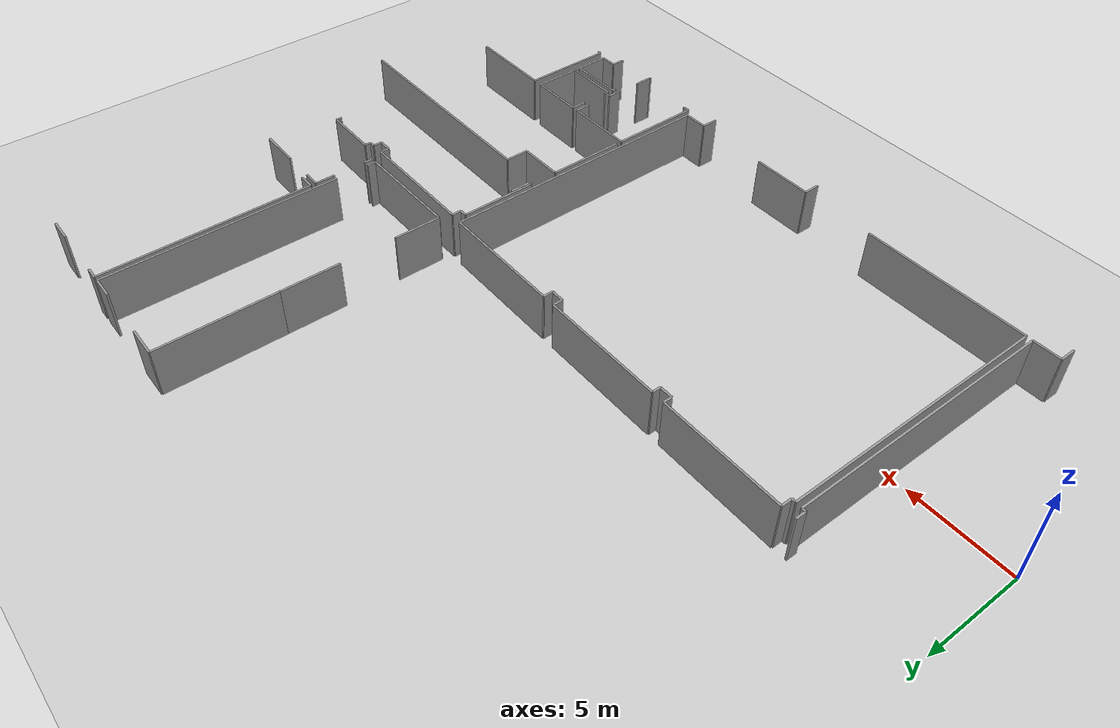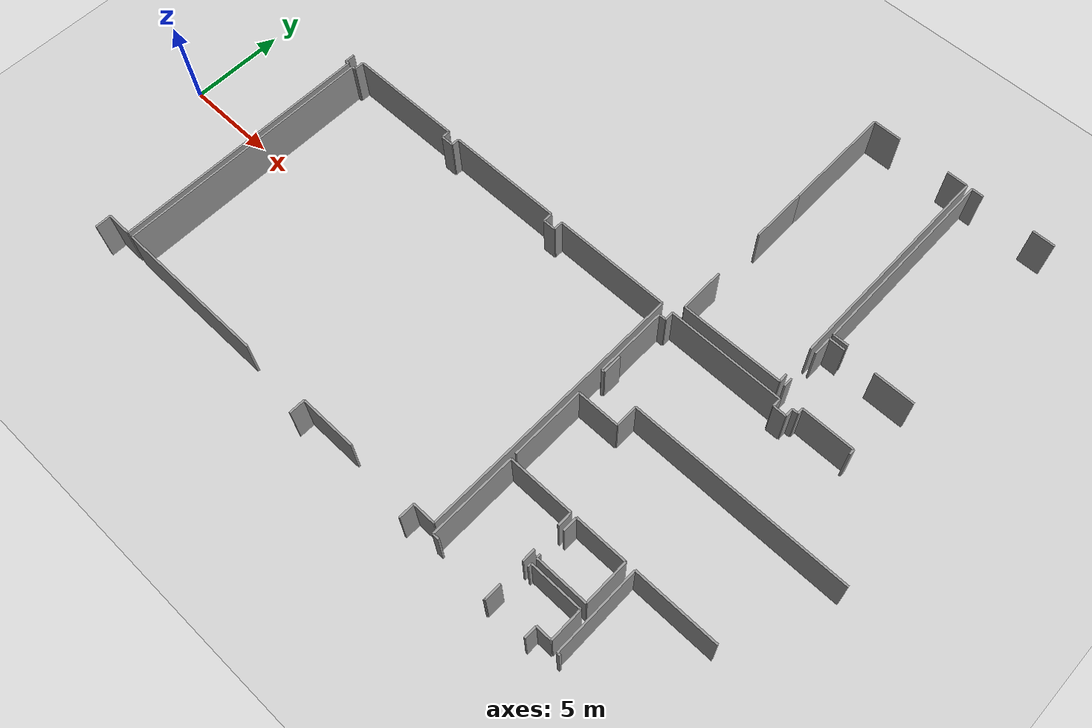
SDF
<sdf version="1.6">
 <world name="default">
  <model name="ground_plane">
   <static>1</static>
   <link name="link">
    <collision name="collision">
     <geometry><plane><normal>0 0 1</normal><size>100 100</size></plane></geometry>
     <surface><friction><ode><mu>100</mu><mu2>50</mu2></ode></friction></surface>
    </collision>
    <visual name="visual">
     <cast_shadows>0</cast_shadows>
     <geometry><plane><normal>0 0 1</normal><size>100 100</size></plane></geometry>
     <material>
      <script><uri>file://media/materials/scripts/gazebo.material</uri><name>Gazebo/Grey</name></script>
     </material>
    </visual>
   </link>
  </model>
  <model name="0510032192_A_40_1_203">
   <static>1</static>
   <link name="Wall_326">
    <collision name="Wall_326_Collision">
     <geometry><box><size>0.519804024986 0.1 2.5</size></box></geometry>
     <pose>0.259902012493 0 1.25 0 0 0</pose>
    </collision>
    <visual name="Wall_326_Visual">
     <pose>0.259902012493 0 1.25 0 0 0</pose>
     <geometry><box><size>0.519804024986 0.1 2.5</size></box></geometry>
     <material>
      <script><uri>file://media/materials/scripts/gazebo.material</uri><name>Gazebo/Grey</name></script>
      <ambient>1 1 1 1</ambient>
     </material>
    </visual>
    <pose>70.1514294611 -17.3870887797 0 0 0 -1.57079632679</pose>
   </link>
   <link name="Wall_327">
    <collision name="Wall_327_Collision">
     <geometry><box><size>0.189620441389 0.1 2.5</size></box></geometry>
     <pose>0.0948102206943 0 1.25 0 0 0</pose>
    </collision>
    <visual name="Wall_327_Visual">
     <pose>0.0948102206943 0 1.25 0 0 0</pose>
     <geometry><box><size>0.189620441389 0.1 2.5</size></box></geometry>
     <material>
      <script><uri>file://media/materials/scripts/gazebo.material</uri><name>Gazebo/Grey</name></script>
      <ambient>1 1 1 1</ambient>
     </material>
    </visual>
    <pose>70.1514294611 -17.9068928047 0 0 0 0.0</pose>
   </link>
   <link name="Wall_328">
    <collision name="Wall_328_Collision">
     <geometry><box><size>13.588363507 0.1 2.5</size></box></geometry>
     <pose>6.79418175348 0 1.25 0 0 0</pose>
    </collision>
    <visual name="Wall_328_Visual">
     <pose>6.79418175348 0 1.25 0 0 0</pose>
     <geometry><box><size>13.588363507 0.1 2.5</size></box></geometry>
     <material>
      <script><uri>file://media/materials/scripts/gazebo.material</uri><name>Gazebo/Grey</name></script>
      <ambient>1 1 1 1</ambient>
     </material>
    </visual>
    <pose>70.3410499025 -17.9068928047 0 0 0 -1.57079632679</pose>
   </link>
   <link name="Wall_329">
    <collision name="Wall_329_Collision">
     <geometry><box><size>1.33954386879 0.1 2.5</size></box></geometry>
     <pose>0.669771934395 0 1.25 0 0 0</pose>
    </collision>
    <visual name="Wall_329_Visual">
     <pose>0.669771934395 0 1.25 0 0 0</pose>
     <geometry><box><size>1.33954386879 0.1 2.5</size></box></geometry>
     <material>
      <script><uri>file://media/materials/scripts/gazebo.material</uri><name>Gazebo/Grey</name></script>
      <ambient>1 1 1 1</ambient>
     </material>
    </visual>
    <pose>70.3410499025 -31.4952563117 0 0 0 3.14159265359</pose>
   </link>
   <link name="Wall_330">
    <collision name="Wall_330_Collision">
     <geometry><box><size>0.822408764226 0.1 2.5</size></box></geometry>
     <pose>0.411204382113 0 1.25 0 0 0</pose>
    </collision>
    <visual name="Wall_330_Visual">
     <pose>0.411204382113 0 1.25 0 0 0</pose>
     <geometry><box><size>0.822408764226 0.1 2.5</size></box></geometry>
     <material>
      <script><uri>file://media/materials/scripts/gazebo.material</uri><name>Gazebo/Grey</name></script>
      <ambient>1 1 1 1</ambient>
     </material>
    </visual>
    <pose>69.0015060337 -31.4952563117 0 0 0 -1.57079632679</pose>
   </link>
   <link name="Wall_333">
    <collision name="Wall_333_Collision">
     <geometry><box><size>13.5799754714 0.1 2.5</size></box></geometry>
     <pose>6.78998773568 0 1.25 0 0 0</pose>
    </collision>
    <visual name="Wall_333_Visual">
     <pose>6.78998773568 0 1.25 0 0 0</pose>
     <geometry><box><size>13.5799754714 0.1 2.5</size></box></geometry>
     <material>
      <script><uri>file://media/materials/scripts/gazebo.material</uri><name>Gazebo/Grey</name></script>
      <ambient>1 1 1 1</ambient>
     </material>
    </visual>
    <pose>70.6456881049 -31.5054236276 0 0 0 1.57079632679</pose>
   </link>
   <link name="Wall_334">
    <collision name="Wall_334_Collision">
     <geometry><box><size>0.193941550643 0.1 2.5</size></box></geometry>
     <pose>0.0969707753214 0 1.25 0 0 0</pose>
    </collision>
    <visual name="Wall_334_Visual">
     <pose>0.0969707753214 0 1.25 0 0 0</pose>
     <geometry><box><size>0.193941550643 0.1 2.5</size></box></geometry>
     <material>
      <script><uri>file://media/materials/scripts/gazebo.material</uri><name>Gazebo/Grey</name></script>
      <ambient>1 1 1 1</ambient>
     </material>
    </visual>
    <pose>70.6456881049 -17.9254481562 0 0 0 0.0</pose>
   </link>
   <link name="Wall_335">
    <collision name="Wall_335_Collision">
     <geometry><box><size>0.523743859894 0.1 2.5</size></box></geometry>
     <pose>0.261871929947 0 1.25 0 0 0</pose>
    </collision>
    <visual name="Wall_335_Visual">
     <pose>0.261871929947 0 1.25 0 0 0</pose>
     <geometry><box><size>0.523743859894 0.1 2.5</size></box></geometry>
     <material>
      <script><uri>file://media/materials/scripts/gazebo.material</uri><name>Gazebo/Grey</name></script>
      <ambient>1 1 1 1</ambient>
     </material>
    </visual>
    <pose>70.8396296555 -17.9254481562 0 0 0 1.57079632679</pose>
   </link>
   <link name="Wall_336">
    <collision name="Wall_336_Collision">
     <geometry><box><size>6.13394167773 0.1 2.5</size></box></geometry>
     <pose>3.06697083887 0 1.25 0 0 0</pose>
    </collision>
    <visual name="Wall_336_Visual">
     <pose>3.06697083887 0 1.25 0 0 0</pose>
     <geometry><box><size>6.13394167773 0.1 2.5</size></box></geometry>
     <material>
      <script><uri>file://media/materials/scripts/gazebo.material</uri><name>Gazebo/Grey</name></script>
      <ambient>1 1 1 1</ambient>
     </material>
    </visual>
    <pose>70.8396296555 -17.4017042963 0 0 0 0.0</pose>
   </link>
   <link name="Wall_337">
    <collision name="Wall_337_Collision">
     <geometry><box><size>0.419655963448 0.1 2.5</size></box></geometry>
     <pose>0.209827981724 0 1.25 0 0 0</pose>
    </collision>
    <visual name="Wall_337_Visual">
     <pose>0.209827981724 0 1.25 0 0 0</pose>
     <geometry><box><size>0.419655963448 0.1 2.5</size></box></geometry>
     <material>
      <script><uri>file://media/materials/scripts/gazebo.material</uri><name>Gazebo/Grey</name></script>
      <ambient>1 1 1 1</ambient>
     </material>
    </visual>
    <pose>76.9735713333 -17.4017042963 0 0 0 -1.57079632679</pose>
   </link>
   <link name="Wall_338">
    <collision name="Wall_338_Collision">
     <geometry><box><size>0.651852040135 0.1 2.5</size></box></geometry>
     <pose>0.325926020068 0 1.25 0 0 0</pose>
    </collision>
    <visual name="Wall_338_Visual">
     <pose>0.325926020068 0 1.25 0 0 0</pose>
     <geometry><box><size>0.651852040135 0.1 2.5</size></box></geometry>
     <material>
      <script><uri>file://media/materials/scripts/gazebo.material</uri><name>Gazebo/Grey</name></script>
      <ambient>1 1 1 1</ambient>
     </material>
    </visual>
    <pose>76.9735713333 -17.8213602598 0 0 0 0.0</pose>
   </link>
   <link name="Wall_339">
    <collision name="Wall_339_Collision">
     <geometry><box><size>0.417876683167 0.1 2.5</size></box></geometry>
     <pose>0.208938341584 0 1.25 0 0 0</pose>
    </collision>
    <visual name="Wall_339_Visual">
     <pose>0.208938341584 0 1.25 0 0 0</pose>
     <geometry><box><size>0.417876683167 0.1 2.5</size></box></geometry>
     <material>
      <script><uri>file://media/materials/scripts/gazebo.material</uri><name>Gazebo/Grey</name></script>
      <ambient>1 1 1 1</ambient>
     </material>
    </visual>
    <pose>77.6254233734 -17.8213602598 0 0 0 1.57079632679</pose>
   </link>
   <link name="Wall_340">
    <collision name="Wall_340_Collision">
     <geometry><box><size>6.17537348999 0.1 2.5</size></box></geometry>
     <pose>3.087686745 0 1.25 0 0 0</pose>
    </collision>
    <visual name="Wall_340_Visual">
     <pose>3.087686745 0 1.25 0 0 0</pose>
     <geometry><box><size>6.17537348999 0.1 2.5</size></box></geometry>
     <material>
      <script><uri>file://media/materials/scripts/gazebo.material</uri><name>Gazebo/Grey</name></script>
      <ambient>1 1 1 1</ambient>
     </material>
    </visual>
    <pose>77.6254233734 -17.4034835766 0 0 0 0.0</pose>
   </link>
   <link name="Wall_341">
    <collision name="Wall_341_Collision">
     <geometry><box><size>0.484726785158 0.1 2.5</size></box></geometry>
     <pose>0.242363392579 0 1.25 0 0 0</pose>
    </collision>
    <visual name="Wall_341_Visual">
     <pose>0.242363392579 0 1.25 0 0 0</pose>
     <geometry><box><size>0.484726785158 0.1 2.5</size></box></geometry>
     <material>
      <script><uri>file://media/materials/scripts/gazebo.material</uri><name>Gazebo/Grey</name></script>
      <ambient>1 1 1 1</ambient>
     </material>
    </visual>
    <pose>83.8007968634 -17.4034835766 0 0 0 -1.57079632679</pose>
   </link>
   <link name="Wall_342">
    <collision name="Wall_342_Collision">
     <geometry><box><size>0.668501019909 0.1 2.5</size></box></geometry>
     <pose>0.334250509954 0 1.25 0 0 0</pose>
    </collision>
    <visual name="Wall_342_Visual">
     <pose>0.334250509954 0 1.25 0 0 0</pose>
     <geometry><box><size>0.668501019909 0.1 2.5</size></box></geometry>
     <material>
      <script><uri>file://media/materials/scripts/gazebo.material</uri><name>Gazebo/Grey</name></script>
      <ambient>1 1 1 1</ambient>
     </material>
    </visual>
    <pose>83.8007968634 -17.8882103618 0 0 0 0.0</pose>
   </link>
   <link name="Wall_343">
    <collision name="Wall_343_Collision">
     <geometry><box><size>0.484726785158 0.1 2.5</size></box></geometry>
     <pose>0.242363392579 0 1.25 0 0 0</pose>
    </collision>
    <visual name="Wall_343_Visual">
     <pose>0.242363392579 0 1.25 0 0 0</pose>
     <geometry><box><size>0.484726785158 0.1 2.5</size></box></geometry>
     <material>
      <script><uri>file://media/materials/scripts/gazebo.material</uri><name>Gazebo/Grey</name></script>
      <ambient>1 1 1 1</ambient>
     </material>
    </visual>
    <pose>84.4692978833 -17.8882103618 0 0 0 1.57079632679</pose>
   </link>
   <link name="Wall_344">
    <collision name="Wall_344_Collision">
     <geometry><box><size>6.18503244009 0.1 2.5</size></box></geometry>
     <pose>3.09251622005 0 1.25 0 0 0</pose>
    </collision>
    <visual name="Wall_344_Visual">
     <pose>3.09251622005 0 1.25 0 0 0</pose>
     <geometry><box><size>6.18503244009 0.1 2.5</size></box></geometry>
     <material>
      <script><uri>file://media/materials/scripts/gazebo.material</uri><name>Gazebo/Grey</name></script>
      <ambient>1 1 1 1</ambient>
     </material>
    </visual>
    <pose>84.4692978833 -17.4034835766 0 0 0 0.0</pose>
   </link>
   <link name="Wall_345">
    <collision name="Wall_345_Collision">
     <geometry><box><size>14.0822408764 0.1 2.5</size></box></geometry>
     <pose>7.04112043821 0 1.25 0 0 0</pose>
    </collision>
    <visual name="Wall_345_Visual">
     <pose>7.04112043821 0 1.25 0 0 0</pose>
     <geometry><box><size>14.0822408764 0.1 2.5</size></box></geometry>
     <material>
      <script><uri>file://media/materials/scripts/gazebo.material</uri><name>Gazebo/Grey</name></script>
      <ambient>1 1 1 1</ambient>
     </material>
    </visual>
    <pose>90.6543303234 -17.4034835766 0 0 0 -1.57079632679</pose>
   </link>
   <link name="Wall_346">
    <collision name="Wall_346_Collision">
     <geometry><box><size>1.1930074285 0.1 2.5</size></box></geometry>
     <pose>0.596503714248 0 1.25 0 0 0</pose>
    </collision>
    <visual name="Wall_346_Visual">
     <pose>0.596503714248 0 1.25 0 0 0</pose>
     <geometry><box><size>1.1930074285 0.1 2.5</size></box></geometry>
     <material>
      <script><uri>file://media/materials/scripts/gazebo.material</uri><name>Gazebo/Grey</name></script>
      <ambient>1 1 1 1</ambient>
     </material>
    </visual>
    <pose>90.6543303234 -31.485724453 0 0 0 3.14159265359</pose>
   </link>
   <link name="Wall_347">
    <collision name="Wall_347_Collision">
     <geometry><box><size>0.82774660507 0.1 2.5</size></box></geometry>
     <pose>0.413873302535 0 1.25 0 0 0</pose>
    </collision>
    <visual name="Wall_347_Visual">
     <pose>0.413873302535 0 1.25 0 0 0</pose>
     <geometry><box><size>0.82774660507 0.1 2.5</size></box></geometry>
     <material>
      <script><uri>file://media/materials/scripts/gazebo.material</uri><name>Gazebo/Grey</name></script>
      <ambient>1 1 1 1</ambient>
     </material>
    </visual>
    <pose>89.4613228949 -31.485724453 0 0 0 -1.57079632679</pose>
   </link>
   <link name="Wall_351">
    <collision name="Wall_351_Collision">
     <geometry><box><size>3.02121791735 0.1 2.5</size></box></geometry>
     <pose>1.51060895868 0 1.25 0 0 0</pose>
    </collision>
    <visual name="Wall_351_Visual">
     <pose>1.51060895868 0 1.25 0 0 0</pose>
     <geometry><box><size>3.02121791735 0.1 2.5</size></box></geometry>
     <material>
      <script><uri>file://media/materials/scripts/gazebo.material</uri><name>Gazebo/Grey</name></script>
      <ambient>1 1 1 1</ambient>
     </material>
    </visual>
    <pose>85.6512483558 -31.4983065064 0 0 0 3.14159265359</pose>
   </link>
   <link name="Wall_352">
    <collision name="Wall_352_Collision">
     <geometry><box><size>0.822281672778 0.1 2.5</size></box></geometry>
     <pose>0.411140836389 0 1.25 0 0 0</pose>
    </collision>
    <visual name="Wall_352_Visual">
     <pose>0.411140836389 0 1.25 0 0 0</pose>
     <geometry><box><size>0.822281672778 0.1 2.5</size></box></geometry>
     <material>
      <script><uri>file://media/materials/scripts/gazebo.material</uri><name>Gazebo/Grey</name></script>
      <ambient>1 1 1 1</ambient>
     </material>
    </visual>
    <pose>82.6300304384 -31.4983065064 0 0 0 -1.57079632679</pose>
   </link>
   <link name="Wall_355">
    <collision name="Wall_355_Collision">
     <geometry><box><size>8.19803406178 0.1 2.5</size></box></geometry>
     <pose>4.09901703089 0 1.25 0 0 0</pose>
    </collision>
    <visual name="Wall_355_Visual">
     <pose>4.09901703089 0 1.25 0 0 0</pose>
     <geometry><box><size>8.19803406178 0.1 2.5</size></box></geometry>
     <material>
      <script><uri>file://media/materials/scripts/gazebo.material</uri><name>Gazebo/Grey</name></script>
      <ambient>1 1 1 1</ambient>
     </material>
    </visual>
    <pose>78.8437220002 -31.5037714387 0 0 0 -3.14139111883</pose>
   </link>
   <link name="Wall_357">
    <collision name="Wall_357_Collision">
     <geometry><box><size>0.334250509954 0.1 2.5</size></box></geometry>
     <pose>0.167125254977 0 1.25 0 0 0</pose>
    </collision>
    <visual name="Wall_357_Visual">
     <pose>0.167125254977 0 1.25 0 0 0</pose>
     <geometry><box><size>0.334250509954 0.1 2.5</size></box></geometry>
     <material>
      <script><uri>file://media/materials/scripts/gazebo.material</uri><name>Gazebo/Grey</name></script>
      <ambient>1 1 1 1</ambient>
     </material>
    </visual>
    <pose>91.2965234134 -31.8350988454 0 0 0 3.14159265359</pose>
   </link>
   <link name="Wall_358">
    <collision name="Wall_358_Collision">
     <geometry><box><size>4.51988027986 0.1 2.5</size></box></geometry>
     <pose>2.25994013993 0 1.25 0 0 0</pose>
    </collision>
    <visual name="Wall_358_Visual">
     <pose>2.25994013993 0 1.25 0 0 0</pose>
     <geometry><box><size>4.51988027986 0.1 2.5</size></box></geometry>
     <material>
      <script><uri>file://media/materials/scripts/gazebo.material</uri><name>Gazebo/Grey</name></script>
      <ambient>1 1 1 1</ambient>
     </material>
    </visual>
    <pose>90.9622729035 -31.8350988454 0 0 0 1.57079632679</pose>
   </link>
   <link name="Wall_359">
    <collision name="Wall_359_Collision">
     <geometry><box><size>3.45955632375 0.1 2.5</size></box></geometry>
     <pose>1.72977816188 0 1.25 0 0 0</pose>
    </collision>
    <visual name="Wall_359_Visual">
     <pose>1.72977816188 0 1.25 0 0 0</pose>
     <geometry><box><size>3.45955632375 0.1 2.5</size></box></geometry>
     <material>
      <script><uri>file://media/materials/scripts/gazebo.material</uri><name>Gazebo/Grey</name></script>
      <ambient>1 1 1 1</ambient>
     </material>
    </visual>
    <pose>90.9622729035 -27.3152185655 0 0 0 0.0</pose>
   </link>
   <link name="Wall_360">
    <collision name="Wall_360_Collision">
     <geometry><box><size>0.767886532755 0.1 2.5</size></box></geometry>
     <pose>0.383943266377 0 1.25 0 0 0</pose>
    </collision>
    <visual name="Wall_360_Visual">
     <pose>0.383943266377 0 1.25 0 0 0</pose>
     <geometry><box><size>0.767886532755 0.1 2.5</size></box></geometry>
     <material>
      <script><uri>file://media/materials/scripts/gazebo.material</uri><name>Gazebo/Grey</name></script>
      <ambient>1 1 1 1</ambient>
     </material>
    </visual>
    <pose>94.4218292272 -27.3152185655 0 0 0 -1.57079632679</pose>
   </link>
   <link name="Wall_361">
    <collision name="Wall_361_Collision">
     <geometry><box><size>0.681972713466 0.1 2.5</size></box></geometry>
     <pose>0.340986356733 0 1.25 0 0 0</pose>
    </collision>
    <visual name="Wall_361_Visual">
     <pose>0.340986356733 0 1.25 0 0 0</pose>
     <geometry><box><size>0.681972713466 0.1 2.5</size></box></geometry>
     <material>
      <script><uri>file://media/materials/scripts/gazebo.material</uri><name>Gazebo/Grey</name></script>
      <ambient>1 1 1 1</ambient>
     </material>
    </visual>
    <pose>94.4218292272 -29.4663684254 0 0 0 -1.57079632679</pose>
   </link>
   <link name="Wall_362">
    <collision name="Wall_362_Collision">
     <geometry><box><size>0.889513049114 0.1 2.5</size></box></geometry>
     <pose>0.444756524557 0 1.25 0 0 0</pose>
    </collision>
    <visual name="Wall_362_Visual">
     <pose>0.444756524557 0 1.25 0 0 0</pose>
     <geometry><box><size>0.889513049114 0.1 2.5</size></box></geometry>
     <material>
      <script><uri>file://media/materials/scripts/gazebo.material</uri><name>Gazebo/Grey</name></script>
      <ambient>1 1 1 1</ambient>
     </material>
    </visual>
    <pose>94.4218292272 -31.4148074247 0 0 0 -1.57079632679</pose>
   </link>
   <link name="Wall_363">
    <collision name="Wall_363_Collision">
     <geometry><box><size>0.0604955295583 0.1 2.5</size></box></geometry>
     <pose>0.0302477647791 0 1.25 0 0 0</pose>
    </collision>
    <visual name="Wall_363_Visual">
     <pose>0.0302477647791 0 1.25 0 0 0</pose>
     <geometry><box><size>0.0604955295583 0.1 2.5</size></box></geometry>
     <material>
      <script><uri>file://media/materials/scripts/gazebo.material</uri><name>Gazebo/Grey</name></script>
      <ambient>1 1 1 1</ambient>
     </material>
    </visual>
    <pose>94.4218292272 -32.3043204738 0 0 0 3.14159265359</pose>
   </link>
   <link name="Wall_366">
    <collision name="Wall_366_Collision">
     <geometry><box><size>0.167252346426 0.1 2.5</size></box></geometry>
     <pose>0.0836261732129 0 1.25 0 0 0</pose>
    </collision>
    <visual name="Wall_366_Visual">
     <pose>0.0836261732129 0 1.25 0 0 0</pose>
     <geometry><box><size>0.167252346426 0.1 2.5</size></box></geometry>
     <material>
      <script><uri>file://media/materials/scripts/gazebo.material</uri><name>Gazebo/Grey</name></script>
      <ambient>1 1 1 1</ambient>
     </material>
    </visual>
    <pose>98.1262907725 -31.8504769107 0 0 0 3.14159265359</pose>
   </link>
   <link name="Wall_367">
    <collision name="Wall_367_Collision">
     <geometry><box><size>4.53665635108 0.1 2.5</size></box></geometry>
     <pose>2.26832817554 0 1.25 0 0 0</pose>
    </collision>
    <visual name="Wall_367_Visual">
     <pose>2.26832817554 0 1.25 0 0 0</pose>
     <geometry><box><size>4.53665635108 0.1 2.5</size></box></geometry>
     <material>
      <script><uri>file://media/materials/scripts/gazebo.material</uri><name>Gazebo/Grey</name></script>
      <ambient>1 1 1 1</ambient>
     </material>
    </visual>
    <pose>97.9590384261 -31.8504769107 0 0 0 1.57079632679</pose>
   </link>
   <link name="Wall_368">
    <collision name="Wall_368_Collision">
     <geometry><box><size>4.35224665908 0.1 2.5</size></box></geometry>
     <pose>2.17612332954 0 1.25 0 0 0</pose>
    </collision>
    <visual name="Wall_368_Visual">
     <pose>2.17612332954 0 1.25 0 0 0</pose>
     <geometry><box><size>4.35224665908 0.1 2.5</size></box></geometry>
     <material>
      <script><uri>file://media/materials/scripts/gazebo.material</uri><name>Gazebo/Grey</name></script>
      <ambient>1 1 1 1</ambient>
     </material>
    </visual>
    <pose>97.9590384261 -27.3138205596 0 0 0 0.0</pose>
   </link>
   <link name="Wall_394">
    <collision name="Wall_394_Collision">
     <geometry><box><size>0.208557067238 0.1 2.5</size></box></geometry>
     <pose>0.104278533619 0 1.25 0 0 0</pose>
    </collision>
    <visual name="Wall_394_Visual">
     <pose>0.104278533619 0 1.25 0 0 0</pose>
     <geometry><box><size>0.208557067238 0.1 2.5</size></box></geometry>
     <material>
      <script><uri>file://media/materials/scripts/gazebo.material</uri><name>Gazebo/Grey</name></script>
      <ambient>1 1 1 1</ambient>
     </material>
    </visual>
    <pose>94.7311698132 -29.6533199464 0 0 0 1.57079632679</pose>
   </link>
   <link name="Wall_395">
    <collision name="Wall_395_Collision">
     <geometry><box><size>0.772716007803 0.1 2.5</size></box></geometry>
     <pose>0.386358003902 0 1.25 0 0 0</pose>
    </collision>
    <visual name="Wall_395_Visual">
     <pose>0.386358003902 0 1.25 0 0 0</pose>
     <geometry><box><size>0.772716007803 0.1 2.5</size></box></geometry>
     <material>
      <script><uri>file://media/materials/scripts/gazebo.material</uri><name>Gazebo/Grey</name></script>
      <ambient>1 1 1 1</ambient>
     </material>
    </visual>
    <pose>94.7311698132 -28.0881887562 0 0 0 1.57079632679</pose>
   </link>
   <link name="Wall_396">
    <collision name="Wall_396_Collision">
     <geometry><box><size>2.72560320779 0.1 2.5</size></box></geometry>
     <pose>1.36280160389 0 1.25 0 0 0</pose>
    </collision>
    <visual name="Wall_396_Visual">
     <pose>1.36280160389 0 1.25 0 0 0</pose>
     <geometry><box><size>2.72560320779 0.1 2.5</size></box></geometry>
     <material>
      <script><uri>file://media/materials/scripts/gazebo.material</uri><name>Gazebo/Grey</name></script>
      <ambient>1 1 1 1</ambient>
     </material>
    </visual>
    <pose>94.7311698132 -27.3154727484 0 0 0 0.0</pose>
   </link>
   <link name="Wall_397">
    <collision name="Wall_397_Collision">
     <geometry><box><size>2.33022171103 0.1 2.5</size></box></geometry>
     <pose>1.16511085552 0 1.25 0 0 0</pose>
    </collision>
    <visual name="Wall_397_Visual">
     <pose>1.16511085552 0 1.25 0 0 0</pose>
     <geometry><box><size>2.33022171103 0.1 2.5</size></box></geometry>
     <material>
      <script><uri>file://media/materials/scripts/gazebo.material</uri><name>Gazebo/Grey</name></script>
      <ambient>1 1 1 1</ambient>
     </material>
    </visual>
    <pose>97.456773021 -27.3154727484 0 0 0 -1.57079632679</pose>
   </link>
   <link name="Wall_398">
    <collision name="Wall_398_Collision">
     <geometry><box><size>2.72561387477 0.1 2.5</size></box></geometry>
     <pose>1.36280693739 0 1.25 0 0 0</pose>
    </collision>
    <visual name="Wall_398_Visual">
     <pose>1.36280693739 0 1.25 0 0 0</pose>
     <geometry><box><size>2.72561387477 0.1 2.5</size></box></geometry>
     <material>
      <script><uri>file://media/materials/scripts/gazebo.material</uri><name>Gazebo/Grey</name></script>
      <ambient>1 1 1 1</ambient>
     </material>
    </visual>
    <pose>97.456773021 -29.6456944594 0 0 0 -3.13879493637</pose>
   </link>
   <link name="Wall_400">
    <collision name="Wall_400_Collision">
     <geometry><box><size>0.196229196719 0.1 2.5</size></box></geometry>
     <pose>0.0981145983593 0 1.25 0 0 0</pose>
    </collision>
    <visual name="Wall_400_Visual">
     <pose>0.0981145983593 0 1.25 0 0 0</pose>
     <geometry><box><size>0.196229196719 0.1 2.5</size></box></geometry>
     <material>
      <script><uri>file://media/materials/scripts/gazebo.material</uri><name>Gazebo/Grey</name></script>
      <ambient>1 1 1 1</ambient>
     </material>
    </visual>
    <pose>94.7310427218 -30.1689299535 0 0 0 1.57079632679</pose>
   </link>
   <link name="Wall_401">
    <collision name="Wall_401_Collision">
     <geometry><box><size>2.73043268284 0.1 2.5</size></box></geometry>
     <pose>1.36521634142 0 1.25 0 0 0</pose>
    </collision>
    <visual name="Wall_401_Visual">
     <pose>1.36521634142 0 1.25 0 0 0</pose>
     <geometry><box><size>2.73043268284 0.1 2.5</size></box></geometry>
     <material>
      <script><uri>file://media/materials/scripts/gazebo.material</uri><name>Gazebo/Grey</name></script>
      <ambient>1 1 1 1</ambient>
     </material>
    </visual>
    <pose>94.7310427218 -29.9727007568 0 0 0 0.0</pose>
   </link>
   <link name="Wall_402">
    <collision name="Wall_402_Collision">
     <geometry><box><size>1.67862385379 0.1 2.5</size></box></geometry>
     <pose>0.839311926897 0 1.25 0 0 0</pose>
    </collision>
    <visual name="Wall_402_Visual">
     <pose>0.839311926897 0 1.25 0 0 0</pose>
     <geometry><box><size>1.67862385379 0.1 2.5</size></box></geometry>
     <material>
      <script><uri>file://media/materials/scripts/gazebo.material</uri><name>Gazebo/Grey</name></script>
      <ambient>1 1 1 1</ambient>
     </material>
    </visual>
    <pose>97.4614754046 -29.9727007568 0 0 0 -1.57079632679</pose>
   </link>
   <link name="Wall_403">
    <collision name="Wall_403_Collision">
     <geometry><box><size>0.82113784974 0.1 2.5</size></box></geometry>
     <pose>0.41056892487 0 1.25 0 0 0</pose>
    </collision>
    <visual name="Wall_403_Visual">
     <pose>0.41056892487 0 1.25 0 0 0</pose>
     <geometry><box><size>0.82113784974 0.1 2.5</size></box></geometry>
     <material>
      <script><uri>file://media/materials/scripts/gazebo.material</uri><name>Gazebo/Grey</name></script>
      <ambient>1 1 1 1</ambient>
     </material>
    </visual>
    <pose>97.4614754046 -31.6513246106 0 0 0 3.14159265359</pose>
   </link>
   <link name="Wall_404">
    <collision name="Wall_404_Collision">
     <geometry><box><size>0.661256807336 0.1 2.5</size></box></geometry>
     <pose>0.330628403668 0 1.25 0 0 0</pose>
    </collision>
    <visual name="Wall_404_Visual">
     <pose>0.330628403668 0 1.25 0 0 0</pose>
     <geometry><box><size>0.661256807336 0.1 2.5</size></box></geometry>
     <material>
      <script><uri>file://media/materials/scripts/gazebo.material</uri><name>Gazebo/Grey</name></script>
      <ambient>1 1 1 1</ambient>
     </material>
    </visual>
    <pose>96.6403375549 -31.6513246106 0 0 0 -1.57079632679</pose>
   </link>
   <link name="Wall_417">
    <collision name="Wall_417_Collision">
     <geometry><box><size>3.88238957342 0.1 2.5</size></box></geometry>
     <pose>1.94119478671 0 1.25 0 0 0</pose>
    </collision>
    <visual name="Wall_417_Visual">
     <pose>1.94119478671 0 1.25 0 0 0</pose>
     <geometry><box><size>3.88238957342 0.1 2.5</size></box></geometry>
     <material>
      <script><uri>file://media/materials/scripts/gazebo.material</uri><name>Gazebo/Grey</name></script>
      <ambient>1 1 1 1</ambient>
     </material>
    </visual>
    <pose>90.952232679 -27.025577154 0 0 0 1.57079632679</pose>
   </link>
   <link name="Wall_418">
    <collision name="Wall_418_Collision">
     <geometry><box><size>2.2295652837 0.1 2.5</size></box></geometry>
     <pose>1.11478264185 0 1.25 0 0 0</pose>
    </collision>
    <visual name="Wall_418_Visual">
     <pose>1.11478264185 0 1.25 0 0 0</pose>
     <geometry><box><size>2.2295652837 0.1 2.5</size></box></geometry>
     <material>
      <script><uri>file://media/materials/scripts/gazebo.material</uri><name>Gazebo/Grey</name></script>
      <ambient>1 1 1 1</ambient>
     </material>
    </visual>
    <pose>90.952232679 -23.1431875806 0 0 0 0.0</pose>
   </link>
   <link name="Wall_419">
    <collision name="Wall_419_Collision">
     <geometry><box><size>1.1687329618 0.1 2.5</size></box></geometry>
     <pose>0.584366480901 0 1.25 0 0 0</pose>
    </collision>
    <visual name="Wall_419_Visual">
     <pose>0.584366480901 0 1.25 0 0 0</pose>
     <geometry><box><size>1.1687329618 0.1 2.5</size></box></geometry>
     <material>
      <script><uri>file://media/materials/scripts/gazebo.material</uri><name>Gazebo/Grey</name></script>
      <ambient>1 1 1 1</ambient>
     </material>
    </visual>
    <pose>93.1817979627 -23.1431875806 0 0 0 1.57079632679</pose>
   </link>
   <link name="Wall_420">
    <collision name="Wall_420_Collision">
     <geometry><box><size>11.4309861661 0.1 2.5</size></box></geometry>
     <pose>5.71549308305 0 1.25 0 0 0</pose>
    </collision>
    <visual name="Wall_420_Visual">
     <pose>5.71549308305 0 1.25 0 0 0</pose>
     <geometry><box><size>11.4309861661 0.1 2.5</size></box></geometry>
     <material>
      <script><uri>file://media/materials/scripts/gazebo.material</uri><name>Gazebo/Grey</name></script>
      <ambient>1 1 1 1</ambient>
     </material>
    </visual>
    <pose>93.1817979627 -21.9744546188 0 0 0 0.0</pose>
   </link>
   <link name="Wall_424">
    <collision name="Wall_424_Collision">
     <geometry><box><size>3.76076305706 0.1 2.5</size></box></geometry>
     <pose>1.88038152853 0 1.25 0 0 0</pose>
    </collision>
    <visual name="Wall_424_Visual">
     <pose>1.88038152853 0 1.25 0 0 0</pose>
     <geometry><box><size>3.76076305706 0.1 2.5</size></box></geometry>
     <material>
      <script><uri>file://media/materials/scripts/gazebo.material</uri><name>Gazebo/Grey</name></script>
      <ambient>1 1 1 1</ambient>
     </material>
    </visual>
    <pose>90.9427008204 -21.6823984698 0 0 0 1.57079632679</pose>
   </link>
   <link name="Wall_425">
    <collision name="Wall_425_Collision">
     <geometry><box><size>0.370598664269 0.1 2.5</size></box></geometry>
     <pose>0.185299332134 0 1.25 0 0 0</pose>
    </collision>
    <visual name="Wall_425_Visual">
     <pose>0.185299332134 0 1.25 0 0 0</pose>
     <geometry><box><size>0.370598664269 0.1 2.5</size></box></geometry>
     <material>
      <script><uri>file://media/materials/scripts/gazebo.material</uri><name>Gazebo/Grey</name></script>
      <ambient>1 1 1 1</ambient>
     </material>
    </visual>
    <pose>90.9427008204 -17.9216354128 0 0 0 0.0</pose>
   </link>
   <link name="Wall_426">
    <collision name="Wall_426_Collision">
     <geometry><box><size>0.467950713936 0.1 2.5</size></box></geometry>
     <pose>0.233975356968 0 1.25 0 0 0</pose>
    </collision>
    <visual name="Wall_426_Visual">
     <pose>0.233975356968 0 1.25 0 0 0</pose>
     <geometry><box><size>0.467950713936 0.1 2.5</size></box></geometry>
     <material>
      <script><uri>file://media/materials/scripts/gazebo.material</uri><name>Gazebo/Grey</name></script>
      <ambient>1 1 1 1</ambient>
     </material>
    </visual>
    <pose>91.3132994846 -17.9216354128 0 0 0 1.57079632679</pose>
   </link>
   <link name="Wall_427">
    <collision name="Wall_427_Collision">
     <geometry><box><size>6.13368749484 0.1 2.5</size></box></geometry>
     <pose>3.06684374742 0 1.25 0 0 0</pose>
    </collision>
    <visual name="Wall_427_Visual">
     <pose>3.06684374742 0 1.25 0 0 0</pose>
     <geometry><box><size>6.13368749484 0.1 2.5</size></box></geometry>
     <material>
      <script><uri>file://media/materials/scripts/gazebo.material</uri><name>Gazebo/Grey</name></script>
      <ambient>1 1 1 1</ambient>
     </material>
    </visual>
    <pose>91.3132994846 -17.4536846988 0 0 0 0.0</pose>
   </link>
   <link name="Wall_428">
    <collision name="Wall_428_Collision">
     <geometry><box><size>0.442786607103 0.1 2.5</size></box></geometry>
     <pose>0.221393303552 0 1.25 0 0 0</pose>
    </collision>
    <visual name="Wall_428_Visual">
     <pose>0.221393303552 0 1.25 0 0 0</pose>
     <geometry><box><size>0.442786607103 0.1 2.5</size></box></geometry>
     <material>
      <script><uri>file://media/materials/scripts/gazebo.material</uri><name>Gazebo/Grey</name></script>
      <ambient>1 1 1 1</ambient>
     </material>
    </visual>
    <pose>97.4469869795 -17.4536846988 0 0 0 -1.57079632679</pose>
   </link>
   <link name="Wall_429">
    <collision name="Wall_429_Collision">
     <geometry><box><size>0.676761964071 0.1 2.5</size></box></geometry>
     <pose>0.338380982036 0 1.25 0 0 0</pose>
    </collision>
    <visual name="Wall_429_Visual">
     <pose>0.338380982036 0 1.25 0 0 0</pose>
     <geometry><box><size>0.676761964071 0.1 2.5</size></box></geometry>
     <material>
      <script><uri>file://media/materials/scripts/gazebo.material</uri><name>Gazebo/Grey</name></script>
      <ambient>1 1 1 1</ambient>
     </material>
    </visual>
    <pose>97.4469869795 -17.8964713059 0 0 0 0.0</pose>
   </link>
   <link name="Wall_430">
    <collision name="Wall_430_Collision">
     <geometry><box><size>0.442786607103 0.1 2.5</size></box></geometry>
     <pose>0.221393303552 0 1.25 0 0 0</pose>
    </collision>
    <visual name="Wall_430_Visual">
     <pose>0.221393303552 0 1.25 0 0 0</pose>
     <geometry><box><size>0.442786607103 0.1 2.5</size></box></geometry>
     <material>
      <script><uri>file://media/materials/scripts/gazebo.material</uri><name>Gazebo/Grey</name></script>
      <ambient>1 1 1 1</ambient>
     </material>
    </visual>
    <pose>98.1237489436 -17.8964713059 0 0 0 1.57079632679</pose>
   </link>
   <link name="Wall_431">
    <collision name="Wall_431_Collision">
     <geometry><box><size>0.300825458959 0.1 2.5</size></box></geometry>
     <pose>0.150412729479 0 1.25 0 0 0</pose>
    </collision>
    <visual name="Wall_431_Visual">
     <pose>0.150412729479 0 1.25 0 0 0</pose>
     <geometry><box><size>0.300825458959 0.1 2.5</size></box></geometry>
     <material>
      <script><uri>file://media/materials/scripts/gazebo.material</uri><name>Gazebo/Grey</name></script>
      <ambient>1 1 1 1</ambient>
     </material>
    </visual>
    <pose>98.1237489436 -17.4536846988 0 0 0 0.0</pose>
   </link>
   <link name="Wall_432">
    <collision name="Wall_432_Collision">
     <geometry><box><size>0.30921349457 0.1 2.5</size></box></geometry>
     <pose>0.154606747285 0 1.25 0 0 0</pose>
    </collision>
    <visual name="Wall_432_Visual">
     <pose>0.154606747285 0 1.25 0 0 0</pose>
     <geometry><box><size>0.30921349457 0.1 2.5</size></box></geometry>
     <material>
      <script><uri>file://media/materials/scripts/gazebo.material</uri><name>Gazebo/Grey</name></script>
      <ambient>1 1 1 1</ambient>
     </material>
    </visual>
    <pose>98.4245744025 -17.4536846988 0 0 0 1.57079632679</pose>
   </link>
   <link name="Wall_433">
    <collision name="Wall_433_Collision">
     <geometry><box><size>2.75000476593 0.1 2.5</size></box></geometry>
     <pose>1.37500238296 0 1.25 0 0 0</pose>
    </collision>
    <visual name="Wall_433_Visual">
     <pose>1.37500238296 0 1.25 0 0 0</pose>
     <geometry><box><size>2.75000476593 0.1 2.5</size></box></geometry>
     <material>
      <script><uri>file://media/materials/scripts/gazebo.material</uri><name>Gazebo/Grey</name></script>
      <ambient>1 1 1 1</ambient>
     </material>
    </visual>
    <pose>98.4245744025 -17.1444712043 0 0 0 0.0</pose>
   </link>
   <link name="Wall_434">
    <collision name="Wall_434_Collision">
     <geometry><box><size>0.278965729791 0.1 2.5</size></box></geometry>
     <pose>0.139482864895 0 1.25 0 0 0</pose>
    </collision>
    <visual name="Wall_434_Visual">
     <pose>0.139482864895 0 1.25 0 0 0</pose>
     <geometry><box><size>0.278965729791 0.1 2.5</size></box></geometry>
     <material>
      <script><uri>file://media/materials/scripts/gazebo.material</uri><name>Gazebo/Grey</name></script>
      <ambient>1 1 1 1</ambient>
     </material>
    </visual>
    <pose>101.174579168 -17.1444712043 0 0 0 -1.57079632679</pose>
   </link>
   <link name="Wall_442">
    <collision name="Wall_442_Collision">
     <geometry><box><size>0.991821665279 0.1 2.5</size></box></geometry>
     <pose>0.49591083264 0 1.25 0 0 0</pose>
    </collision>
    <visual name="Wall_442_Visual">
     <pose>0.49591083264 0 1.25 0 0 0</pose>
     <geometry><box><size>0.991821665279 0.1 2.5</size></box></geometry>
     <material>
      <script><uri>file://media/materials/scripts/gazebo.material</uri><name>Gazebo/Grey</name></script>
      <ambient>1 1 1 1</ambient>
     </material>
    </visual>
    <pose>91.0709360921 -20.673419459 0 0 0 -1.57079632679</pose>
   </link>
   <link name="Wall_443">
    <collision name="Wall_443_Collision">
     <geometry><box><size>0.129377971124 0.1 2.5</size></box></geometry>
     <pose>0.0646889855622 0 1.25 0 0 0</pose>
    </collision>
    <visual name="Wall_443_Visual">
     <pose>0.0646889855622 0 1.25 0 0 0</pose>
     <geometry><box><size>0.129377971124 0.1 2.5</size></box></geometry>
     <material>
      <script><uri>file://media/materials/scripts/gazebo.material</uri><name>Gazebo/Grey</name></script>
      <ambient>1 1 1 1</ambient>
     </material>
    </visual>
    <pose>91.0709360921 -21.6652411243 0 0 0 -3.0085867234</pose>
   </link>
   <link name="Wall_463">
    <collision name="Wall_463_Collision">
     <geometry><box><size>0.480532767353 0.1 2.5</size></box></geometry>
     <pose>0.240266383676 0 1.25 0 0 0</pose>
    </collision>
    <visual name="Wall_463_Visual">
     <pose>0.240266383676 0 1.25 0 0 0</pose>
     <geometry><box><size>0.480532767353 0.1 2.5</size></box></geometry>
     <material>
      <script><uri>file://media/materials/scripts/gazebo.material</uri><name>Gazebo/Grey</name></script>
      <ambient>1 1 1 1</ambient>
     </material>
    </visual>
    <pose>97.1891184302 -16.8390704531 0 0 0 1.57079632679</pose>
   </link>
   <link name="Wall_464">
    <collision name="Wall_464_Collision">
     <geometry><box><size>1.00567463318 0.1 2.5</size></box></geometry>
     <pose>0.502837316591 0 1.25 0 0 0</pose>
    </collision>
    <visual name="Wall_464_Visual">
     <pose>0.502837316591 0 1.25 0 0 0</pose>
     <geometry><box><size>1.00567463318 0.1 2.5</size></box></geometry>
     <material>
      <script><uri>file://media/materials/scripts/gazebo.material</uri><name>Gazebo/Grey</name></script>
      <ambient>1 1 1 1</ambient>
     </material>
    </visual>
    <pose>97.1891184302 -14.6874122275 0 0 0 1.57079632679</pose>
   </link>
   <link name="Wall_465">
    <collision name="Wall_465_Collision">
     <geometry><box><size>0.825967324789 0.1 2.5</size></box></geometry>
     <pose>0.412983662394 0 1.25 0 0 0</pose>
    </collision>
    <visual name="Wall_465_Visual">
     <pose>0.412983662394 0 1.25 0 0 0</pose>
     <geometry><box><size>0.825967324789 0.1 2.5</size></box></geometry>
     <material>
      <script><uri>file://media/materials/scripts/gazebo.material</uri><name>Gazebo/Grey</name></script>
      <ambient>1 1 1 1</ambient>
     </material>
    </visual>
    <pose>97.1891184302 -13.6817375943 0 0 0 0.0</pose>
   </link>
   <link name="Wall_466">
    <collision name="Wall_466_Collision">
     <geometry><box><size>2.1117515108 0.1 2.5</size></box></geometry>
     <pose>1.0558757554 0 1.25 0 0 0</pose>
    </collision>
    <visual name="Wall_466_Visual">
     <pose>1.0558757554 0 1.25 0 0 0</pose>
     <geometry><box><size>2.1117515108 0.1 2.5</size></box></geometry>
     <material>
      <script><uri>file://media/materials/scripts/gazebo.material</uri><name>Gazebo/Grey</name></script>
      <ambient>1 1 1 1</ambient>
     </material>
    </visual>
    <pose>99.6470670471 -13.6817375943 0 0 0 0.0</pose>
   </link>
   <link name="Wall_484">
    <collision name="Wall_484_Collision">
     <geometry><box><size>2.35055634282 0.1 2.5</size></box></geometry>
     <pose>1.17527817141 0 1.25 0 0 0</pose>
    </collision>
    <visual name="Wall_484_Visual">
     <pose>1.17527817141 0 1.25 0 0 0</pose>
     <geometry><box><size>2.35055634282 0.1 2.5</size></box></geometry>
     <material>
      <script><uri>file://media/materials/scripts/gazebo.material</uri><name>Gazebo/Grey</name></script>
      <ambient>1 1 1 1</ambient>
     </material>
    </visual>
    <pose>91.5099099557 -16.8511441408 0 0 0 1.57079632679</pose>
   </link>
   <link name="Wall_485">
    <collision name="Wall_485_Collision">
     <geometry><box><size>2.97012715499 0.1 2.5</size></box></geometry>
     <pose>1.4850635775 0 1.25 0 0 0</pose>
    </collision>
    <visual name="Wall_485_Visual">
     <pose>1.4850635775 0 1.25 0 0 0</pose>
     <geometry><box><size>2.97012715499 0.1 2.5</size></box></geometry>
     <material>
      <script><uri>file://media/materials/scripts/gazebo.material</uri><name>Gazebo/Grey</name></script>
      <ambient>1 1 1 1</ambient>
     </material>
    </visual>
    <pose>91.5099099557 -11.6923751485 0 0 0 1.57079632679</pose>
   </link>
   <link name="Wall_486">
    <collision name="Wall_486_Collision">
     <geometry><box><size>5.85268830187 0.1 2.5</size></box></geometry>
     <pose>2.92634415093 0 1.25 0 0 0</pose>
    </collision>
    <visual name="Wall_486_Visual">
     <pose>2.92634415093 0 1.25 0 0 0</pose>
     <geometry><box><size>5.85268830187 0.1 2.5</size></box></geometry>
     <material>
      <script><uri>file://media/materials/scripts/gazebo.material</uri><name>Gazebo/Grey</name></script>
      <ambient>1 1 1 1</ambient>
     </material>
    </visual>
    <pose>91.5099099557 -8.72224799354 0 0 0 1.57079632679</pose>
   </link>
   <link name="Wall_487">
    <collision name="Wall_487_Collision">
     <geometry><box><size>1.50450856914 0.1 2.5</size></box></geometry>
     <pose>0.75225428457 0 1.25 0 0 0</pose>
    </collision>
    <visual name="Wall_487_Visual">
     <pose>0.75225428457 0 1.25 0 0 0</pose>
     <geometry><box><size>1.50450856914 0.1 2.5</size></box></geometry>
     <material>
      <script><uri>file://media/materials/scripts/gazebo.material</uri><name>Gazebo/Grey</name></script>
      <ambient>1 1 1 1</ambient>
     </material>
    </visual>
    <pose>91.5099099557 -2.86955969168 0 0 0 0.0</pose>
   </link>
   <link name="Wall_488">
    <collision name="Wall_488_Collision">
     <geometry><box><size>1.10480596313 0.1 2.5</size></box></geometry>
     <pose>0.552402981565 0 1.25 0 0 0</pose>
    </collision>
    <visual name="Wall_488_Visual">
     <pose>0.552402981565 0 1.25 0 0 0</pose>
     <geometry><box><size>1.10480596313 0.1 2.5</size></box></geometry>
     <material>
      <script><uri>file://media/materials/scripts/gazebo.material</uri><name>Gazebo/Grey</name></script>
      <ambient>1 1 1 1</ambient>
     </material>
    </visual>
    <pose>95.7970857931 -2.86955969168 0 0 0 0.0</pose>
   </link>
   <link name="Wall_489">
    <collision name="Wall_489_Collision">
     <geometry><box><size>11.7846816677 0.1 2.5</size></box></geometry>
     <pose>5.89234083385 0 1.25 0 0 0</pose>
    </collision>
    <visual name="Wall_489_Visual">
     <pose>5.89234083385 0 1.25 0 0 0</pose>
     <geometry><box><size>11.7846816677 0.1 2.5</size></box></geometry>
     <material>
      <script><uri>file://media/materials/scripts/gazebo.material</uri><name>Gazebo/Grey</name></script>
      <ambient>1 1 1 1</ambient>
     </material>
    </visual>
    <pose>96.9018917562 -2.86955969168 0 0 0 -1.57079632679</pose>
   </link>
   <link name="Wall_490">
    <collision name="Wall_490_Collision">
     <geometry><box><size>0.454097746033 0.1 2.5</size></box></geometry>
     <pose>0.227048873017 0 1.25 0 0 0</pose>
    </collision>
    <visual name="Wall_490_Visual">
     <pose>0.227048873017 0 1.25 0 0 0</pose>
     <geometry><box><size>0.454097746033 0.1 2.5</size></box></geometry>
     <material>
      <script><uri>file://media/materials/scripts/gazebo.material</uri><name>Gazebo/Grey</name></script>
      <ambient>1 1 1 1</ambient>
     </material>
    </visual>
    <pose>96.9018917562 -16.3561229483 0 0 0 -1.57079632679</pose>
   </link>
   <link name="Wall_491">
    <collision name="Wall_491_Collision">
     <geometry><box><size>5.39213709631 0.1 2.5</size></box></geometry>
     <pose>2.69606854816 0 1.25 0 0 0</pose>
    </collision>
    <visual name="Wall_491_Visual">
     <pose>2.69606854816 0 1.25 0 0 0</pose>
     <geometry><box><size>5.39213709631 0.1 2.5</size></box></geometry>
     <material>
      <script><uri>file://media/materials/scripts/gazebo.material</uri><name>Gazebo/Grey</name></script>
      <ambient>1 1 1 1</ambient>
     </material>
    </visual>
    <pose>96.9018917562 -16.8102206943 0 0 0 -3.13400311374</pose>
   </link>
   <link name="Wall_492">
    <collision name="Wall_492_Collision">
     <geometry><box><size>10.5532544943 0.1 2.5</size></box></geometry>
     <pose>5.27662724714 0 1.25 0 0 0</pose>
    </collision>
    <visual name="Wall_492_Visual">
     <pose>5.27662724714 0 1.25 0 0 0</pose>
     <geometry><box><size>10.5532544943 0.1 2.5</size></box></geometry>
     <material>
      <script><uri>file://media/materials/scripts/gazebo.material</uri><name>Gazebo/Grey</name></script>
      <ambient>1 1 1 1</ambient>
     </material>
    </visual>
    <pose>97.1861953268 -13.4164977409 0 0 0 1.57079632679</pose>
   </link>
   <link name="Wall_493">
    <collision name="Wall_493_Collision">
     <geometry><box><size>0.620079177973 0.1 2.5</size></box></geometry>
     <pose>0.310039588986 0 1.25 0 0 0</pose>
    </collision>
    <visual name="Wall_493_Visual">
     <pose>0.310039588986 0 1.25 0 0 0</pose>
     <geometry><box><size>0.620079177973 0.1 2.5</size></box></geometry>
     <material>
      <script><uri>file://media/materials/scripts/gazebo.material</uri><name>Gazebo/Grey</name></script>
      <ambient>1 1 1 1</ambient>
     </material>
    </visual>
    <pose>97.1861953268 -2.86324324668 0 0 0 0.0</pose>
   </link>
   <link name="Wall_494">
    <collision name="Wall_494_Collision">
     <geometry><box><size>1.18665285606 0.1 2.5</size></box></geometry>
     <pose>0.593326428031 0 1.25 0 0 0</pose>
    </collision>
    <visual name="Wall_494_Visual">
     <pose>0.593326428031 0 1.25 0 0 0</pose>
     <geometry><box><size>1.18665285606 0.1 2.5</size></box></geometry>
     <material>
      <script><uri>file://media/materials/scripts/gazebo.material</uri><name>Gazebo/Grey</name></script>
      <ambient>1 1 1 1</ambient>
     </material>
    </visual>
    <pose>100.563904758 -2.86324324668 0 0 0 0.0</pose>
   </link>
   <link name="Wall_497">
    <collision name="Wall_497_Collision">
     <geometry><box><size>0.806913536136 0.1 2.5</size></box></geometry>
     <pose>0.403456768068 0 1.25 0 0 0</pose>
    </collision>
    <visual name="Wall_497_Visual">
     <pose>0.403456768068 0 1.25 0 0 0</pose>
     <geometry><box><size>0.806913536136 0.1 2.5</size></box></geometry>
     <material>
      <script><uri>file://media/materials/scripts/gazebo.material</uri><name>Gazebo/Grey</name></script>
      <ambient>1 1 1 1</ambient>
     </material>
    </visual>
    <pose>97.9929718429 -13.4016280415 0 0 0 -3.12316373829</pose>
   </link>
   <pose>-64.55 23.3936883209 0 0 0 0</pose>
  </model>
 </world>
</sdf>
